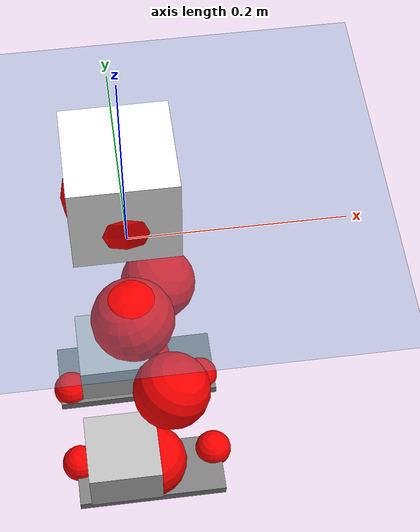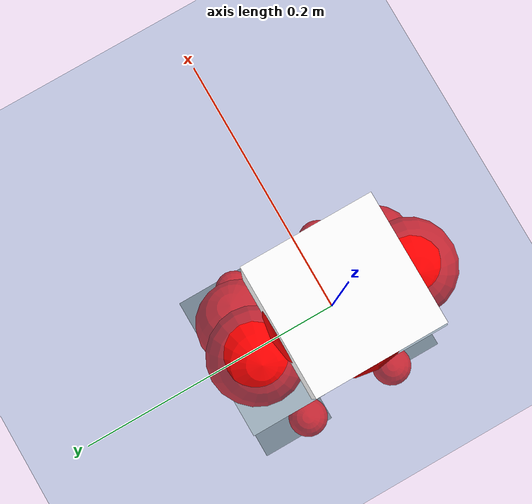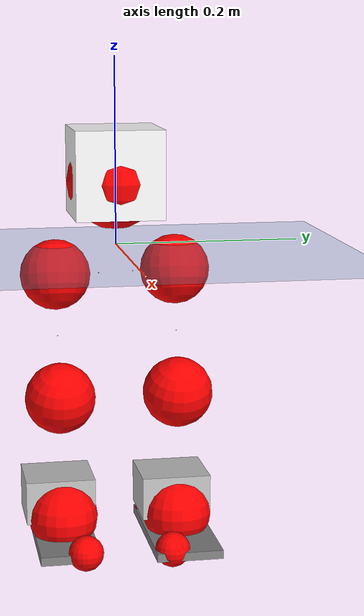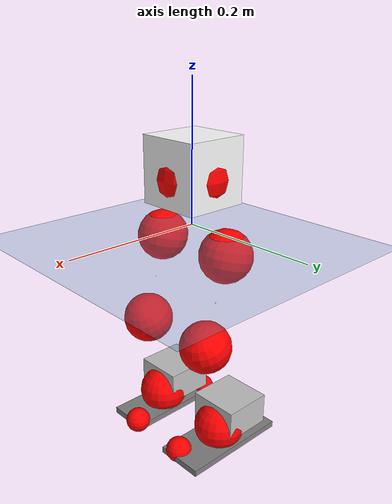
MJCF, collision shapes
<mujoco model="pi_12dof_release_v1">
  <compiler angle="radian" assetdir="assets" balanceinertia="true" inertiafromgeom="false"/>

  <option timestep="0.005" density="1.2" viscosity="2e-05"/>

  <size nkey="1"/>

  <visual>
    <quality shadowsize="8192"/>
    <map shadowclip="0.5"/>
  </visual>

  <default>
    <default class="/">
      <joint armature="0.01" damping="0.01" frictionloss="0.01"/>
      <geom contype="0" conaffinity="0" group="1" solref="-1000 -80"/>
      <site size="0.01 0.005 0.005" group="5"/>
      <general forcelimited="true" biastype="affine" gainprm="20" biasprm="0 -20 -0.5"/>
      <default class="foot">
        <geom size="0.0845 0.036 0.005" type="box" condim="6" group="4" priority="1" friction="0.9 0.2 0.2" solimp="0.015 1 0.005"/>
      </default>
      <default class="reward_collision_sphere">
        <geom group="5" rgba="1 0 0 1"/>
      </default>
    </default>
  </default>

  <asset>
    <texture type="skybox" colorspace="auto" name="//unnamed_texture_0" builtin="gradient" rgb1="0.95 0.95 0.95" rgb2="0.95 0.95 0.95" width="100" height="600"/>
    <texture type="2d" colorspace="auto" name="texplane" builtin="checker" rgb1="0.345 0.575 0.748" rgb2="0.345 0.575 0.748" markrgb="1 1 1" width="512" height="512"/>
    <material name="MatPlane" class="/" texture="texplane" texuniform="true" texrepeat="2 2" specular="0.9"/>
    <mesh name="baselink_1" class="/" file="baselink_1.STL"/>
    <mesh name="r_hip_pitch_link" class="/" file="r_hip_pitch_link.STL"/>
    <mesh name="r_hip_roll_link" class="/" file="r_hip_roll_link.STL"/>
    <mesh name="r_thigh_link" class="/" file="r_thigh_link.STL"/>
    <mesh name="r_calf_link" class="/" file="r_calf_link.STL"/>
    <mesh name="r_ankle_pitch_link" class="/" file="r_ankle_pitch_link.STL"/>
    <mesh name="r_ankle_roll_link" class="/" file="r_ankle_roll_link.STL"/>
    <mesh name="l_hip_pitch_link" class="/" file="l_hip_pitch_link.STL"/>
    <mesh name="l_hip_roll_link" class="/" file="l_hip_roll_link.STL"/>
    <mesh name="l_thigh_link" class="/" file="l_thigh_link.STL"/>
    <mesh name="l_calf_link" class="/" file="l_calf_link.STL"/>
    <mesh name="l_ankle_pitch_link" class="/" file="l_ankle_pitch_link.STL"/>
    <mesh name="l_ankle_roll_link" class="/" file="l_ankle_roll_link.STL"/>
  </asset>

  <worldbody>
    <geom name="floor" class="/" size="100 100 0.125" type="plane" group="0" material="MatPlane"/>
    <light name="toplight_shadow" class="/" pos="0 0 5" dir="0.0990148 0.0990148 -0.990148" type="directional" ambient="0.04 0.04 0.04" diffuse="0.55 0.55 0.55" specular="0.12 0.12 0.12"/>
    <light name="toplight_fill" class="/" pos="0 0 5" dir="0.0990148 0.0990148 -0.990148" type="directional" castshadow="false" ambient="0.04 0.04 0.04" diffuse="0.3 0.3 0.3" specular="0.08 0.08 0.08"/>
    <body name="trunk" pos="-0.00219819 -0.000468104 0.00103017" quat="1 0.000175847 0.000281143 0.000526818">
      <inertial pos="3.7754e-05 0.000473237 0.0389548" quat="0.69523 0.0147868 0.0103 0.718562" mass="1.82055" diaginertia="0.0121936 0.00376513 0.00348564"/>
      <joint name="//unnamed_joint_0" type="free"/>
      <geom name="//unnamed_geom_1" class="/" type="mesh" density="0" rgba="1 1 1 1" mesh="baselink_1"/>
      <geom name="//unnamed_geom_2" class="/" size="0.0473409 0.0473409 0.0473409" pos="0 0 0.0768226" type="box" rgba="1 1 1 1"/>
      <geom name="//unnamed_geom_3" class="reward_collision_sphere" size="0.052075" pos="0 0 0.0672198"/>
      <site name="imu" class="/" pos="-0.00087646 -0.00515911 0.00377549" size="0.00946818"/>
      <camera name="track" class="/" pos="0 -1.67611 0" quat="0.707107 0.707107 0 0" mode="trackcom"/>
      <camera name="ego_camera" class="/" pos="0.0781587 0 0.172851" quat="-0.5 -0.5 0.5 0.5"/>
      <body name="r_hip_pitch_link" pos="-0.000157088 -0.0181295 -0.0323184" quat="0.992251 0.000803737 -0.12425 -0.000414053">
        <inertial pos="-0.00129026 -0.0471092 0.00106746" quat="-0.0182409 0.705692 -0.0293677 0.707675" mass="0.318905" diaginertia="0.000135862 4.03325e-05 6.88057e-05"/>
        <joint name="r_hip_pitch_joint" class="/" pos="0 0 0" axis="0.00328451 -0.999995 -0.000446637" range="-1.75006 1.23047" armature="0.0095029" damping="0.0170266" frictionloss="0.00973372"/>
        <geom name="//unnamed_geom_4" class="/" type="mesh" density="0" rgba="0.75294 0.75294 0.75294 1" mesh="r_hip_pitch_link"/>
        <geom name="//unnamed_geom_5" class="/" size="0.000473409 0.000473409 0.000473409" type="box" rgba="0.75294 0.75294 0.75294 1"/>
        <body name="r_hip_roll_link" pos="-0.000187742 -0.0472544 -0.000502888" quat="1 4.75606e-06 2.67243e-05 -8.88757e-06">
          <inertial pos="0.000956491 0.000536158 -0.0575369" quat="0.705632 -0.077633 -0.0810903 0.699629" mass="0.33219" diaginertia="0.000407821 0.000113905 0.000106198"/>
          <joint name="r_hip_roll_joint" class="/" pos="0 0 0" axis="-1 -1.62909e-05 3.36347e-05" range="-0.146888 0.481556" armature="0.00850957" damping="0.00174525" frictionloss="0.00943517"/>
          <geom name="//unnamed_geom_6" class="/" type="mesh" density="0" rgba="0.75294 0.75294 0.75294 1" mesh="r_hip_roll_link"/>
          <geom name="//unnamed_geom_7" class="/" size="0.000473409 0.000473409 0.000473409" type="box" rgba="0.75294 0.75294 0.75294 1"/>
          <geom name="//unnamed_geom_8" class="reward_collision_sphere" size="0.0378727"/>
          <body name="r_thigh_link" pos="-3.93868e-05 -9.73659e-05 -0.0657904" quat="1 -1.83222e-05 2.30043e-05 -1.41172e-05">
            <inertial pos="0.000237293 0.000149616 -0.0463789" quat="0.737839 0.674922 0.00664194 -0.00541189" mass="0.0945976" diaginertia="0.000155281 3.87502e-05 4.71178e-05"/>
            <joint name="r_thigh_joint" class="/" pos="0 0 0" axis="-0.00228243 -0.00127719 -0.999997" range="-0.299505 0.594145" armature="0.0087039" damping="0" frictionloss="0.00931285"/>
            <geom name="//unnamed_geom_9" class="/" type="mesh" density="0" rgba="0.75294 0.75294 0.75294 1" mesh="r_thigh_link"/>
            <geom name="//unnamed_geom_10" class="/" size="0.000473409 0.000473409 0.000473409" type="box" rgba="0.75294 0.75294 0.75294 1"/>
            <body name="r_calf_link" pos="-9.35837e-05 0.000121164 -0.066987" quat="0.947528 -0.000144732 0.319672 -2.0423e-05">
              <inertial pos="0.000597325 -0.00165796 -0.0671561" quat="0.999982 -0.00296386 -0.000508298 0.00518757" mass="0.716153" diaginertia="0.00433699 0.00146037 0.000143268"/>
              <joint name="r_calf_joint" class="/" pos="0 0 0" axis="0.000791379 -1 0.000164555" stiffness="0.00617269" range="-1.65611 0.615188" armature="0.0107324" damping="0" frictionloss="0.0106011"/>
              <geom name="//unnamed_geom_11" class="/" type="mesh" density="0" rgba="0.75294 0.75294 0.75294 1" mesh="r_calf_link"/>
              <geom name="//unnamed_geom_12" class="/" size="0.000473409 0.000473409 0.000473409" type="box" rgba="0.75294 0.75294 0.75294 1"/>
              <geom name="//unnamed_geom_13" class="reward_collision_sphere" size="0.0378727"/>
              <body name="r_ankle_pitch_link" pos="-0.000403581 0.000744002 -0.132829" quat="0.979959 0.000689277 -0.199195 0.000724521">
                <inertial pos="0.00434296 0.000681283 0.000580974" quat="0.00206393 0.705767 -0.0022777 0.708438" mass="0.146695" diaginertia="0.000382199 9.39767e-05 9.76132e-05"/>
                <joint name="r_ankle_pitch_joint" class="/" pos="0 0 0" axis="-0.00830802 -0.999915 -0.0100813" range="-1.32171 0.521777" armature="0.00937409" damping="0.00904696" frictionloss="0.0093105"/>
                <geom name="//unnamed_geom_14" class="/" type="mesh" density="0" rgba="0.75294 0.75294 0.75294 1" mesh="r_ankle_pitch_link"/>
                <geom name="//unnamed_geom_15" class="/" size="0.0369259 0.0378727 0.0236704" type="box" rgba="0.75294 0.75294 0.75294 1"/>
                <body name="r_ankle_roll_link" pos="0.0802412 0.00299012 0.000186865" quat="1 -4.89965e-05 4.10605e-05 -6.8967e-06">
                  <inertial pos="-0.0254177 9.79519e-05 -0.0132901" quat="0.558878 0.432171 0.433929 0.559096" mass="0.443615" diaginertia="0.00144134 0.000430079 0.000235576"/>
                  <joint name="r_ankle_roll_joint" class="/" pos="0 0 0" axis="-0.999913 0.00179842 0.0130674" range="-0.163297 0.123441" armature="0.0093773" damping="0.00331107" frictionloss="0.00930909"/>
                  <geom name="//unnamed_geom_16" class="/" type="mesh" density="0" rgba="0.75294 0.75294 0.75294 1" mesh="r_ankle_roll_link"/>
                  <geom name="//unnamed_geom_17" class="/" type="mesh" rgba="0.75294 0.75294 0.75294 1" mesh="r_ankle_roll_link"/>
                  <geom name="right_foot" class="foot" size="0.0761106 0.0321806 0.00477509" pos="-0.0531479 0 -0.0422524"/>
                  <geom name="//unnamed_geom_19" class="reward_collision_sphere" size="0.0378727" pos="-0.0521058 0 -0.0192057"/>
                  <geom name="//unnamed_geom_20" class="reward_collision_sphere" size="0.0189364" pos="0.0156317 0.0167611 -0.0384113"/>
                  <geom name="//unnamed_geom_21" class="reward_collision_sphere" size="0.0189364" pos="-0.125054 0.0167611 -0.0384113"/>
                  <site name="right_foot" class="foot" pos="-0.0531479 0 -0.0422524" size="0.00946818"/>
                </body>
              </body>
            </body>
          </body>
        </body>
      </body>
      <body name="l_hip_pitch_link" pos="0.00110838 0.0184709 -0.031212" quat="0.992091 -0.000271401 -0.125516 0.000884495">
        <inertial pos="0.00305886 0.0458677 -5.80158e-06" quat="-0.0381928 0.705635 0.0296249 0.706925" mass="0.32993" diaginertia="0.000157954 4.39444e-05 8.31308e-05"/>
        <joint name="l_hip_pitch_joint" class="/" pos="0 0 0" axis="0.00368686 0.999993 -7.70175e-05" range="-1.25213 1.75182" armature="0.00991449" damping="0" frictionloss="0.00900135"/>
        <geom name="//unnamed_geom_22" class="/" type="mesh" density="0" rgba="0.75294 0.75294 0.75294 1" mesh="l_hip_pitch_link"/>
        <geom name="//unnamed_geom_23" class="/" size="0.000473409 0.000473409 0.000473409" type="box" rgba="0.75294 0.75294 0.75294 1"/>
        <body name="l_hip_roll_link" pos="-0.00165492 0.0463873 0.000904456" quat="0.999999 4.82286e-05 -0.000968586 -0.000260214">
          <inertial pos="-0.0014781 -0.00045135 -0.0584355" quat="0.699971 -0.0723156 -0.0701705 0.707027" mass="0.323728" diaginertia="0.000405201 0.000113195 0.000103594"/>
          <joint name="l_hip_roll_joint" class="/" pos="0 0 0" axis="-0.99998 -0.00330134 0.00535082" stiffness="0.00640506" range="-0.482423 0.136555" armature="0.00982991" damping="0" frictionloss="0.00911643"/>
          <geom name="//unnamed_geom_24" class="/" type="mesh" density="0" rgba="0.75294 0.75294 0.75294 1" mesh="l_hip_roll_link"/>
          <geom name="//unnamed_geom_25" class="/" size="0.000473409 0.000473409 0.000473409" type="box" rgba="0.75294 0.75294 0.75294 1"/>
          <geom name="//unnamed_geom_26" class="reward_collision_sphere" size="0.0378727"/>
          <body name="l_thigh_link" pos="4.37901e-05 -0.00111255 -0.0671879" quat="1 7.34021e-05 0.000229538 -0.000139967">
            <inertial pos="0.000199746 -0.00148556 -0.04621" quat="0.6752 0.737635 -3.63561e-05 7.94245e-05" mass="0.0959261" diaginertia="0.000153149 3.90658e-05 4.70466e-05"/>
            <joint name="l_thigh_joint" class="/" pos="0 0 0" axis="-0.000156943 -0.00145761 -0.999999" range="-0.603591 0.292856" armature="0.00971155" damping="0.00193222" frictionloss="0.00928638"/>
            <geom name="//unnamed_geom_27" class="/" type="mesh" density="0" rgba="0.75294 0.75294 0.75294 1" mesh="l_thigh_link"/>
            <geom name="//unnamed_geom_28" class="/" size="0.000473409 0.000473409 0.000473409" type="box" rgba="0.75294 0.75294 0.75294 1"/>
            <body name="l_calf_link" pos="0.000277861 -0.0014083 -0.066537" quat="0.947565 -0.000112386 0.319564 0.00030897">
              <inertial pos="0.00031698 0.00327995 -0.0672468" quat="0.999917 -0.000997788 0.00388896 0.0122565" mass="0.694345" diaginertia="0.00432751 0.00145239 0.000144914"/>
              <joint name="l_calf_joint" class="/" pos="0 0 0" axis="0.000490027 1 8.07366e-05" stiffness="0.0045539" range="-0.649801 1.65956" armature="0.00836315" damping="0.00413415" frictionloss="0.0105316"/>
              <geom name="//unnamed_geom_29" class="/" type="mesh" density="0" rgba="0.75294 0.75294 0.75294 1" mesh="l_calf_link"/>
              <geom name="//unnamed_geom_30" class="/" size="0.000473409 0.000473409 0.000473409" type="box" rgba="0.75294 0.75294 0.75294 1"/>
              <geom name="//unnamed_geom_31" class="reward_collision_sphere" size="0.0378727"/>
              <body name="l_ankle_pitch_link" pos="0.00106175 0.00185563 -0.135879" quat="0.980078 -0.000137024 -0.198613 0.000394977">
                <inertial pos="0.00522749 -0.000125931 -0.000289058" quat="-0.00210261 0.706849 0.00194621 0.707359" mass="0.15277" diaginertia="0.000387812 9.29146e-05 9.67559e-05"/>
                <joint name="l_ankle_pitch_joint" class="/" pos="0 0 0" axis="-0.000357384 1 -0.00024328" range="-0.498862 1.29927" armature="0.00955611" damping="0.00202852" frictionloss="0.00900615"/>
                <geom name="//unnamed_geom_32" class="/" type="mesh" density="0" rgba="0.75294 0.75294 0.75294 1" mesh="l_ankle_pitch_link"/>
                <geom name="//unnamed_geom_33" class="/" size="0.0369259 0.0378727 0.0236704" type="box" rgba="0.75294 0.75294 0.75294 1"/>
                <body name="l_ankle_roll_link" pos="0.0763542 0.00222752 -0.000220278" quat="1 -0.00012692 0.000102843 5.75339e-05">
                  <inertial pos="-0.0230985 -0.000461253 -0.0144978" quat="0.561403 0.434253 0.431857 0.556553" mass="0.44044" diaginertia="0.00134312 0.000410812 0.00022538"/>
                  <joint name="l_ankle_roll_joint" class="/" pos="0 0 0" axis="-0.999974 0.00541719 -0.00465469" range="-0.136552 0.154032" armature="0.00965724" damping="0.00539528" frictionloss="0.00917683"/>
                  <geom name="//unnamed_geom_34" class="/" type="mesh" density="0" rgba="0.75294 0.75294 0.75294 1" mesh="l_ankle_roll_link"/>
                  <geom name="//unnamed_geom_35" class="/" type="mesh" rgba="0.75294 0.75294 0.75294 1" mesh="l_ankle_roll_link"/>
                  <geom name="left_foot" class="foot" size="0.0841722 0.0358207 0.0047005" pos="-0.0531479 0 -0.0422524"/>
                  <geom name="//unnamed_geom_37" class="reward_collision_sphere" size="0.0378727" pos="-0.0521058 0 -0.0192057"/>
                  <geom name="//unnamed_geom_38" class="reward_collision_sphere" size="0.0189364" pos="0.0156317 -0.0167611 -0.0384113"/>
                  <geom name="//unnamed_geom_39" class="reward_collision_sphere" size="0.0189364" pos="-0.125054 -0.0167611 -0.0384113"/>
                  <site name="left_foot" class="foot" pos="-0.0531479 0 -0.0422524" size="0.00946818"/>
                </body>
              </body>
            </body>
          </body>
        </body>
      </body>
    </body>
  </worldbody>

  <contact>
    <pair class="/" geom1="floor" geom2="right_foot" name="//unnamed_contact_1"/>
    <pair class="/" geom1="floor" geom2="left_foot" name="//unnamed_contact_0"/>
  </contact>

  <actuator>
    <general name="r_hip_pitch_joint" class="/" joint="r_hip_pitch_joint" forcerange="-20.1382 20.1382" gainprm="19.1551" biasprm="0 -19.1551 -0.48421"/>
    <general name="r_hip_roll_joint" class="/" joint="r_hip_roll_joint" forcerange="-19.9468 19.9468" gainprm="19.1551" biasprm="0 -19.1551 -0.48421"/>
    <general name="r_thigh_joint" class="/" joint="r_thigh_joint" forcerange="-19.7649 19.7649" gainprm="19.1551" biasprm="0 -19.1551 -0.48421"/>
    <general name="r_calf_joint" class="/" joint="r_calf_joint" forcerange="-19.8619 19.8619" gainprm="19.1551" biasprm="0 -19.1551 -0.48421"/>
    <general name="r_ankle_pitch_joint" class="/" joint="r_ankle_pitch_joint" forcerange="-19.7318 19.7318" gainprm="19.1551" biasprm="0 -19.1551 -0.48421"/>
    <general name="r_ankle_roll_joint" class="/" joint="r_ankle_roll_joint" forcerange="-19.9486 19.9486" gainprm="19.1551" biasprm="0 -19.1551 -0.48421"/>
    <general name="l_hip_pitch_joint" class="/" joint="l_hip_pitch_joint" forcerange="-19.8258 19.8258" gainprm="19.1551" biasprm="0 -19.1551 -0.48421"/>
    <general name="l_hip_roll_joint" class="/" joint="l_hip_roll_joint" forcerange="-20.382 20.382" gainprm="19.1551" biasprm="0 -19.1551 -0.48421"/>
    <general name="l_thigh_joint" class="/" joint="l_thigh_joint" forcerange="-19.8371 19.8371" gainprm="19.1551" biasprm="0 -19.1551 -0.48421"/>
    <general name="l_calf_joint" class="/" joint="l_calf_joint" forcerange="-21.6672 21.6672" gainprm="19.1551" biasprm="0 -19.1551 -0.48421"/>
    <general name="l_ankle_pitch_joint" class="/" joint="l_ankle_pitch_joint" forcerange="-19.9892 19.9892" gainprm="19.1551" biasprm="0 -19.1551 -0.48421"/>
    <general name="l_ankle_roll_joint" class="/" joint="l_ankle_roll_joint" forcerange="-19.2702 19.2702" gainprm="19.1551" biasprm="0 -19.1551 -0.48421"/>
  </actuator>

  <sensor>
    <gyro site="imu" name="imu_angular_velocity"/>
    <velocimeter site="imu" name="imu_linear_velocity"/>
    <framelinvel objtype="site" objname="left_foot" name="left_foot_global_linear_velocity"/>
    <framelinvel objtype="site" objname="right_foot" name="right_foot_global_linear_velocity"/>
  </sensor>

  <keyframe>
    <key name="home" qpos="0 0 0.291 1 0 0 0 0.4 0 0 -0.8 0.4 0 -0.4 0 0 0.8 -0.4 0"/>
  </keyframe>
</mujoco>
